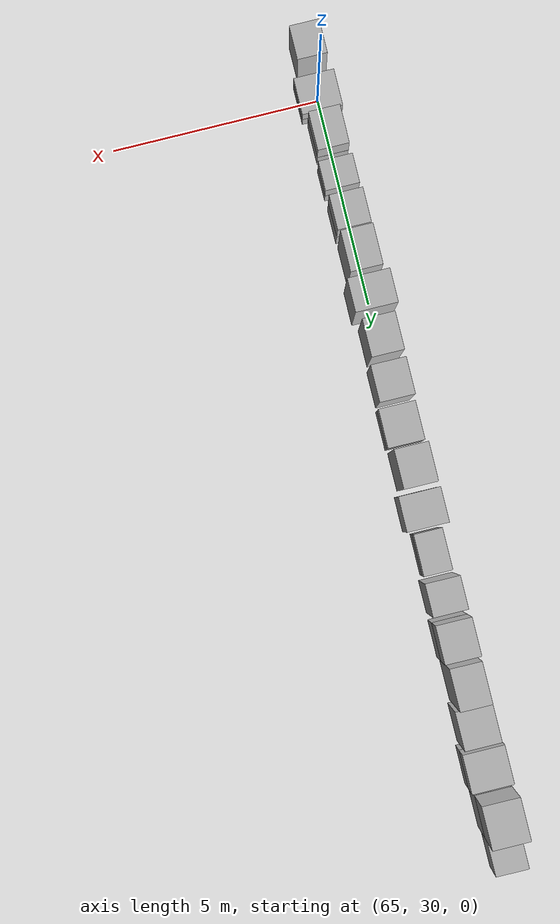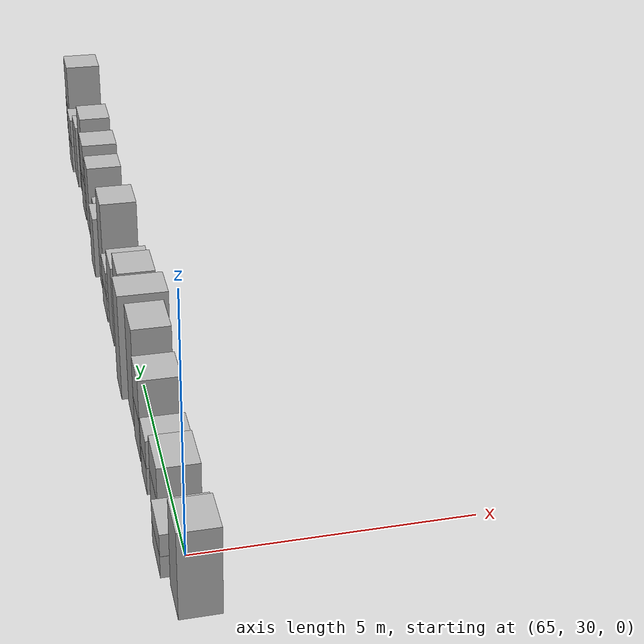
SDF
<sdf version="1.5">
 <world name="default">
  <model name="ground_plane">
   <static>true</static>
   <link name="link">
    <collision name="collision">
     <geometry><plane><normal>0 0 1</normal><size>250 250</size></plane></geometry>
     <surface><friction><ode><mu>1</mu><mu2>1</mu2></ode></friction></surface>
    </collision>
    <visual name="grass">
     <cast_shadows>false</cast_shadows>
     <geometry><mesh><uri>file://grass_plane/meshes/grass_plane.dae</uri></mesh></geometry>
    </visual>
   </link>
  </model>
  <model name="Cardboard_box_739">
   <link name="link_0">
    <pose>65 29 0 0 0 0</pose>
    <inertial>
     <mass>1</mass>
     <inertia>
      <ixx>0.166667</ixx>
      <ixy>0</ixy>
      <ixz>0</ixz>
      <iyy>0.166667</iyy>
      <iyz>0</iyz>
      <izz>0.166667</izz>
     </inertia>
    </inertial>
    <collision name="collision">
     <geometry>
      <mesh>
       <uri>model://Cardboard_box/meshes/cardboard_box.dae</uri>
       <scale>1.76866995523 2.01658315963 4.29012516241</scale>
      </mesh>
     </geometry>
    </collision>
    <visual name="visual">
     <geometry>
      <mesh>
       <uri>model://Cardboard_box/meshes/cardboard_box.dae</uri>
       <scale>1.76866995523 2.01658315963 4.29012516241</scale>
      </mesh>
     </geometry>
    </visual>
   </link>
   <static>1</static>
  </model>
  <model name="Cardboard_box_740">
   <link name="link_0">
    <pose>65 30 0 0 0 0</pose>
    <inertial>
     <mass>1</mass>
     <inertia>
      <ixx>0.166667</ixx>
      <ixy>0</ixy>
      <ixz>0</ixz>
      <iyy>0.166667</iyy>
      <iyz>0</iyz>
      <izz>0.166667</izz>
     </inertia>
    </inertial>
    <collision name="collision">
     <geometry>
      <mesh>
       <uri>model://Cardboard_box/meshes/cardboard_box.dae</uri>
       <scale>2.43798719399 2.21636143207 1.10087545298</scale>
      </mesh>
     </geometry>
    </collision>
    <visual name="visual">
     <geometry>
      <mesh>
       <uri>model://Cardboard_box/meshes/cardboard_box.dae</uri>
       <scale>2.43798719399 2.21636143207 1.10087545298</scale>
      </mesh>
     </geometry>
    </visual>
   </link>
   <static>1</static>
  </model>
  <model name="Cardboard_box_top_740">
   <link name="link_0">
    <pose>65 30 0.440350181191 0 0 0</pose>
    <inertial>
     <mass>1</mass>
     <inertia>
      <ixx>0.166667</ixx>
      <ixy>0</ixy>
      <ixz>0</ixz>
      <iyy>0.166667</iyy>
      <iyz>0</iyz>
      <izz>0.166667</izz>
     </inertia>
    </inertial>
    <collision name="collision">
     <geometry>
      <mesh>
       <uri>model://Cardboard_box/meshes/cardboard_box.dae</uri>
       <scale>2.43798719399 2.21636143207 1.10087545298</scale>
      </mesh>
     </geometry>
    </collision>
    <visual name="visual">
     <geometry>
      <mesh>
       <uri>model://Cardboard_box/meshes/cardboard_box.dae</uri>
       <scale>2.43798719399 2.21636143207 1.10087545298</scale>
      </mesh>
     </geometry>
    </visual>
   </link>
   <static>1</static>
  </model>
  <model name="Cardboard_box_741">
   <link name="link_0">
    <pose>65 31 0 0 0 0</pose>
    <inertial>
     <mass>1</mass>
     <inertia>
      <ixx>0.166667</ixx>
      <ixy>0</ixy>
      <ixz>0</ixz>
      <iyy>0.166667</iyy>
      <iyz>0</iyz>
      <izz>0.166667</izz>
     </inertia>
    </inertial>
    <collision name="collision">
     <geometry>
      <mesh>
       <uri>model://Cardboard_box/meshes/cardboard_box.dae</uri>
       <scale>1.87311480055 2.31538497943 1.75690551858</scale>
      </mesh>
     </geometry>
    </collision>
    <visual name="visual">
     <geometry>
      <mesh>
       <uri>model://Cardboard_box/meshes/cardboard_box.dae</uri>
       <scale>1.87311480055 2.31538497943 1.75690551858</scale>
      </mesh>
     </geometry>
    </visual>
   </link>
   <static>1</static>
  </model>
  <model name="Cardboard_box_top_741">
   <link name="link_0">
    <pose>65 31 0.702762207433 0 0 0</pose>
    <inertial>
     <mass>1</mass>
     <inertia>
      <ixx>0.166667</ixx>
      <ixy>0</ixy>
      <ixz>0</ixz>
      <iyy>0.166667</iyy>
      <iyz>0</iyz>
      <izz>0.166667</izz>
     </inertia>
    </inertial>
    <collision name="collision">
     <geometry>
      <mesh>
       <uri>model://Cardboard_box/meshes/cardboard_box.dae</uri>
       <scale>1.87311480055 2.31538497943 1.75690551858</scale>
      </mesh>
     </geometry>
    </collision>
    <visual name="visual">
     <geometry>
      <mesh>
       <uri>model://Cardboard_box/meshes/cardboard_box.dae</uri>
       <scale>1.87311480055 2.31538497943 1.75690551858</scale>
      </mesh>
     </geometry>
    </visual>
   </link>
   <static>1</static>
  </model>
  <model name="Cardboard_box_742">
   <link name="link_0">
    <pose>65 32 0 0 0 0</pose>
    <inertial>
     <mass>1</mass>
     <inertia>
      <ixx>0.166667</ixx>
      <ixy>0</ixy>
      <ixz>0</ixz>
      <iyy>0.166667</iyy>
      <iyz>0</iyz>
      <izz>0.166667</izz>
     </inertia>
    </inertial>
    <collision name="collision">
     <geometry>
      <mesh>
       <uri>model://Cardboard_box/meshes/cardboard_box.dae</uri>
       <scale>2.0445589176 1.77837506042 1.42715309712</scale>
      </mesh>
     </geometry>
    </collision>
    <visual name="visual">
     <geometry>
      <mesh>
       <uri>model://Cardboard_box/meshes/cardboard_box.dae</uri>
       <scale>2.0445589176 1.77837506042 1.42715309712</scale>
      </mesh>
     </geometry>
    </visual>
   </link>
   <static>1</static>
  </model>
  <model name="Cardboard_box_top_742">
   <link name="link_0">
    <pose>65 32 0.570861238848 0 0 0</pose>
    <inertial>
     <mass>1</mass>
     <inertia>
      <ixx>0.166667</ixx>
      <ixy>0</ixy>
      <ixz>0</ixz>
      <iyy>0.166667</iyy>
      <iyz>0</iyz>
      <izz>0.166667</izz>
     </inertia>
    </inertial>
    <collision name="collision">
     <geometry>
      <mesh>
       <uri>model://Cardboard_box/meshes/cardboard_box.dae</uri>
       <scale>2.0445589176 1.77837506042 1.42715309712</scale>
      </mesh>
     </geometry>
    </collision>
    <visual name="visual">
     <geometry>
      <mesh>
       <uri>model://Cardboard_box/meshes/cardboard_box.dae</uri>
       <scale>2.0445589176 1.77837506042 1.42715309712</scale>
      </mesh>
     </geometry>
    </visual>
   </link>
   <static>1</static>
  </model>
  <model name="Cardboard_box_743">
   <link name="link_0">
    <pose>65 33 0 0 0 0</pose>
    <inertial>
     <mass>1</mass>
     <inertia>
      <ixx>0.166667</ixx>
      <ixy>0</ixy>
      <ixz>0</ixz>
      <iyy>0.166667</iyy>
      <iyz>0</iyz>
      <izz>0.166667</izz>
     </inertia>
    </inertial>
    <collision name="collision">
     <geometry>
      <mesh>
       <uri>model://Cardboard_box/meshes/cardboard_box.dae</uri>
       <scale>1.97959988308 2.07104216451 2.18324209862</scale>
      </mesh>
     </geometry>
    </collision>
    <visual name="visual">
     <geometry>
      <mesh>
       <uri>model://Cardboard_box/meshes/cardboard_box.dae</uri>
       <scale>1.97959988308 2.07104216451 2.18324209862</scale>
      </mesh>
     </geometry>
    </visual>
   </link>
   <static>1</static>
  </model>
  <model name="Cardboard_box_top_743">
   <link name="link_0">
    <pose>65 33 0.873296839447 0 0 0</pose>
    <inertial>
     <mass>1</mass>
     <inertia>
      <ixx>0.166667</ixx>
      <ixy>0</ixy>
      <ixz>0</ixz>
      <iyy>0.166667</iyy>
      <iyz>0</iyz>
      <izz>0.166667</izz>
     </inertia>
    </inertial>
    <collision name="collision">
     <geometry>
      <mesh>
       <uri>model://Cardboard_box/meshes/cardboard_box.dae</uri>
       <scale>1.97959988308 2.07104216451 2.18324209862</scale>
      </mesh>
     </geometry>
    </collision>
    <visual name="visual">
     <geometry>
      <mesh>
       <uri>model://Cardboard_box/meshes/cardboard_box.dae</uri>
       <scale>1.97959988308 2.07104216451 2.18324209862</scale>
      </mesh>
     </geometry>
    </visual>
   </link>
   <static>1</static>
  </model>
  <model name="Cardboard_box_744">
   <link name="link_0">
    <pose>65 34 0 0 0 0</pose>
    <inertial>
     <mass>1</mass>
     <inertia>
      <ixx>0.166667</ixx>
      <ixy>0</ixy>
      <ixz>0</ixz>
      <iyy>0.166667</iyy>
      <iyz>0</iyz>
      <izz>0.166667</izz>
     </inertia>
    </inertial>
    <collision name="collision">
     <geometry>
      <mesh>
       <uri>model://Cardboard_box/meshes/cardboard_box.dae</uri>
       <scale>1.87508634725 2.41101756407 5.58330068926</scale>
      </mesh>
     </geometry>
    </collision>
    <visual name="visual">
     <geometry>
      <mesh>
       <uri>model://Cardboard_box/meshes/cardboard_box.dae</uri>
       <scale>1.87508634725 2.41101756407 5.58330068926</scale>
      </mesh>
     </geometry>
    </visual>
   </link>
   <static>1</static>
  </model>
  <model name="Cardboard_box_745">
   <link name="link_0">
    <pose>65 35 0 0 0 0</pose>
    <inertial>
     <mass>1</mass>
     <inertia>
      <ixx>0.166667</ixx>
      <ixy>0</ixy>
      <ixz>0</ixz>
      <iyy>0.166667</iyy>
      <iyz>0</iyz>
      <izz>0.166667</izz>
     </inertia>
    </inertial>
    <collision name="collision">
     <geometry>
      <mesh>
       <uri>model://Cardboard_box/meshes/cardboard_box.dae</uri>
       <scale>2.46530652901 1.98081289666 5.80742223712</scale>
      </mesh>
     </geometry>
    </collision>
    <visual name="visual">
     <geometry>
      <mesh>
       <uri>model://Cardboard_box/meshes/cardboard_box.dae</uri>
       <scale>2.46530652901 1.98081289666 5.80742223712</scale>
      </mesh>
     </geometry>
    </visual>
   </link>
   <static>1</static>
  </model>
  <model name="Cardboard_box_746">
   <link name="link_0">
    <pose>65 36 0 0 0 0</pose>
    <inertial>
     <mass>1</mass>
     <inertia>
      <ixx>0.166667</ixx>
      <ixy>0</ixy>
      <ixz>0</ixz>
      <iyy>0.166667</iyy>
      <iyz>0</iyz>
      <izz>0.166667</izz>
     </inertia>
    </inertial>
    <collision name="collision">
     <geometry>
      <mesh>
       <uri>model://Cardboard_box/meshes/cardboard_box.dae</uri>
       <scale>1.89600884008 2.22310764352 5.66974886308</scale>
      </mesh>
     </geometry>
    </collision>
    <visual name="visual">
     <geometry>
      <mesh>
       <uri>model://Cardboard_box/meshes/cardboard_box.dae</uri>
       <scale>1.89600884008 2.22310764352 5.66974886308</scale>
      </mesh>
     </geometry>
    </visual>
   </link>
   <static>1</static>
  </model>
  <model name="Cardboard_box_747">
   <link name="link_0">
    <pose>65 37 0 0 0 0</pose>
    <inertial>
     <mass>1</mass>
     <inertia>
      <ixx>0.166667</ixx>
      <ixy>0</ixy>
      <ixz>0</ixz>
      <iyy>0.166667</iyy>
      <iyz>0</iyz>
      <izz>0.166667</izz>
     </inertia>
    </inertial>
    <collision name="collision">
     <geometry>
      <mesh>
       <uri>model://Cardboard_box/meshes/cardboard_box.dae</uri>
       <scale>2.0798650006 2.19241515546 4.60554168689</scale>
      </mesh>
     </geometry>
    </collision>
    <visual name="visual">
     <geometry>
      <mesh>
       <uri>model://Cardboard_box/meshes/cardboard_box.dae</uri>
       <scale>2.0798650006 2.19241515546 4.60554168689</scale>
      </mesh>
     </geometry>
    </visual>
   </link>
   <static>1</static>
  </model>
  <model name="Cardboard_box_748">
   <link name="link_0">
    <pose>65 38 0 0 0 0</pose>
    <inertial>
     <mass>1</mass>
     <inertia>
      <ixx>0.166667</ixx>
      <ixy>0</ixy>
      <ixz>0</ixz>
      <iyy>0.166667</iyy>
      <iyz>0</iyz>
      <izz>0.166667</izz>
     </inertia>
    </inertial>
    <collision name="collision">
     <geometry>
      <mesh>
       <uri>model://Cardboard_box/meshes/cardboard_box.dae</uri>
       <scale>2.19648079356 2.33340761371 1.49632309891</scale>
      </mesh>
     </geometry>
    </collision>
    <visual name="visual">
     <geometry>
      <mesh>
       <uri>model://Cardboard_box/meshes/cardboard_box.dae</uri>
       <scale>2.19648079356 2.33340761371 1.49632309891</scale>
      </mesh>
     </geometry>
    </visual>
   </link>
   <static>1</static>
  </model>
  <model name="Cardboard_box_top_748">
   <link name="link_0">
    <pose>65 38 0.598529239564 0 0 0</pose>
    <inertial>
     <mass>1</mass>
     <inertia>
      <ixx>0.166667</ixx>
      <ixy>0</ixy>
      <ixz>0</ixz>
      <iyy>0.166667</iyy>
      <iyz>0</iyz>
      <izz>0.166667</izz>
     </inertia>
    </inertial>
    <collision name="collision">
     <geometry>
      <mesh>
       <uri>model://Cardboard_box/meshes/cardboard_box.dae</uri>
       <scale>2.19648079356 2.33340761371 1.49632309891</scale>
      </mesh>
     </geometry>
    </collision>
    <visual name="visual">
     <geometry>
      <mesh>
       <uri>model://Cardboard_box/meshes/cardboard_box.dae</uri>
       <scale>2.19648079356 2.33340761371 1.49632309891</scale>
      </mesh>
     </geometry>
    </visual>
   </link>
   <static>1</static>
  </model>
  <model name="Cardboard_box_749">
   <link name="link_0">
    <pose>65 39 0 0 0 0</pose>
    <inertial>
     <mass>1</mass>
     <inertia>
      <ixx>0.166667</ixx>
      <ixy>0</ixy>
      <ixz>0</ixz>
      <iyy>0.166667</iyy>
      <iyz>0</iyz>
      <izz>0.166667</izz>
     </inertia>
    </inertial>
    <collision name="collision">
     <geometry>
      <mesh>
       <uri>model://Cardboard_box/meshes/cardboard_box.dae</uri>
       <scale>1.98604388998 2.2956985302 5.83499440048</scale>
      </mesh>
     </geometry>
    </collision>
    <visual name="visual">
     <geometry>
      <mesh>
       <uri>model://Cardboard_box/meshes/cardboard_box.dae</uri>
       <scale>1.98604388998 2.2956985302 5.83499440048</scale>
      </mesh>
     </geometry>
    </visual>
   </link>
   <static>1</static>
  </model>
  <model name="Cardboard_box_750">
   <link name="link_0">
    <pose>65 40 0 0 0 0</pose>
    <inertial>
     <mass>1</mass>
     <inertia>
      <ixx>0.166667</ixx>
      <ixy>0</ixy>
      <ixz>0</ixz>
      <iyy>0.166667</iyy>
      <iyz>0</iyz>
      <izz>0.166667</izz>
     </inertia>
    </inertial>
    <collision name="collision">
     <geometry>
      <mesh>
       <uri>model://Cardboard_box/meshes/cardboard_box.dae</uri>
       <scale>2.48858319817 2.0896666984 3.70239438747</scale>
      </mesh>
     </geometry>
    </collision>
    <visual name="visual">
     <geometry>
      <mesh>
       <uri>model://Cardboard_box/meshes/cardboard_box.dae</uri>
       <scale>2.48858319817 2.0896666984 3.70239438747</scale>
      </mesh>
     </geometry>
    </visual>
   </link>
   <static>1</static>
  </model>
  <model name="Cardboard_box_751">
   <link name="link_0">
    <pose>65 41 0 0 0 0</pose>
    <inertial>
     <mass>1</mass>
     <inertia>
      <ixx>0.166667</ixx>
      <ixy>0</ixy>
      <ixz>0</ixz>
      <iyy>0.166667</iyy>
      <iyz>0</iyz>
      <izz>0.166667</izz>
     </inertia>
    </inertial>
    <collision name="collision">
     <geometry>
      <mesh>
       <uri>model://Cardboard_box/meshes/cardboard_box.dae</uri>
       <scale>1.71458334023 2.49422733134 1.40936964639</scale>
      </mesh>
     </geometry>
    </collision>
    <visual name="visual">
     <geometry>
      <mesh>
       <uri>model://Cardboard_box/meshes/cardboard_box.dae</uri>
       <scale>1.71458334023 2.49422733134 1.40936964639</scale>
      </mesh>
     </geometry>
    </visual>
   </link>
   <static>1</static>
  </model>
  <model name="Cardboard_box_top_751">
   <link name="link_0">
    <pose>65 41 0.563747858556 0 0 0</pose>
    <inertial>
     <mass>1</mass>
     <inertia>
      <ixx>0.166667</ixx>
      <ixy>0</ixy>
      <ixz>0</ixz>
      <iyy>0.166667</iyy>
      <iyz>0</iyz>
      <izz>0.166667</izz>
     </inertia>
    </inertial>
    <collision name="collision">
     <geometry>
      <mesh>
       <uri>model://Cardboard_box/meshes/cardboard_box.dae</uri>
       <scale>1.71458334023 2.49422733134 1.40936964639</scale>
      </mesh>
     </geometry>
    </collision>
    <visual name="visual">
     <geometry>
      <mesh>
       <uri>model://Cardboard_box/meshes/cardboard_box.dae</uri>
       <scale>1.71458334023 2.49422733134 1.40936964639</scale>
      </mesh>
     </geometry>
    </visual>
   </link>
   <static>1</static>
  </model>
  <model name="Cardboard_box_752">
   <link name="link_0">
    <pose>65 42 0 0 0 0</pose>
    <inertial>
     <mass>1</mass>
     <inertia>
      <ixx>0.166667</ixx>
      <ixy>0</ixy>
      <ixz>0</ixz>
      <iyy>0.166667</iyy>
      <iyz>0</iyz>
      <izz>0.166667</izz>
     </inertia>
    </inertial>
    <collision name="collision">
     <geometry>
      <mesh>
       <uri>model://Cardboard_box/meshes/cardboard_box.dae</uri>
       <scale>2.05489955876 1.96227510527 4.54835801782</scale>
      </mesh>
     </geometry>
    </collision>
    <visual name="visual">
     <geometry>
      <mesh>
       <uri>model://Cardboard_box/meshes/cardboard_box.dae</uri>
       <scale>2.05489955876 1.96227510527 4.54835801782</scale>
      </mesh>
     </geometry>
    </visual>
   </link>
   <static>1</static>
  </model>
  <model name="Cardboard_box_753">
   <link name="link_0">
    <pose>65 43 0 0 0 0</pose>
    <inertial>
     <mass>1</mass>
     <inertia>
      <ixx>0.166667</ixx>
      <ixy>0</ixy>
      <ixz>0</ixz>
      <iyy>0.166667</iyy>
      <iyz>0</iyz>
      <izz>0.166667</izz>
     </inertia>
    </inertial>
    <collision name="collision">
     <geometry>
      <mesh>
       <uri>model://Cardboard_box/meshes/cardboard_box.dae</uri>
       <scale>2.11660725376 2.25254695966 2.50262152532</scale>
      </mesh>
     </geometry>
    </collision>
    <visual name="visual">
     <geometry>
      <mesh>
       <uri>model://Cardboard_box/meshes/cardboard_box.dae</uri>
       <scale>2.11660725376 2.25254695966 2.50262152532</scale>
      </mesh>
     </geometry>
    </visual>
   </link>
   <static>1</static>
  </model>
  <model name="Cardboard_box_top_753">
   <link name="link_0">
    <pose>65 43 1.00104861013 0 0 0</pose>
    <inertial>
     <mass>1</mass>
     <inertia>
      <ixx>0.166667</ixx>
      <ixy>0</ixy>
      <ixz>0</ixz>
      <iyy>0.166667</iyy>
      <iyz>0</iyz>
      <izz>0.166667</izz>
     </inertia>
    </inertial>
    <collision name="collision">
     <geometry>
      <mesh>
       <uri>model://Cardboard_box/meshes/cardboard_box.dae</uri>
       <scale>2.11660725376 2.25254695966 2.50262152532</scale>
      </mesh>
     </geometry>
    </collision>
    <visual name="visual">
     <geometry>
      <mesh>
       <uri>model://Cardboard_box/meshes/cardboard_box.dae</uri>
       <scale>2.11660725376 2.25254695966 2.50262152532</scale>
      </mesh>
     </geometry>
    </visual>
   </link>
   <static>1</static>
  </model>
  <model name="Cardboard_box_754">
   <link name="link_0">
    <pose>65 44 0 0 0 0</pose>
    <inertial>
     <mass>1</mass>
     <inertia>
      <ixx>0.166667</ixx>
      <ixy>0</ixy>
      <ixz>0</ixz>
      <iyy>0.166667</iyy>
      <iyz>0</iyz>
      <izz>0.166667</izz>
     </inertia>
    </inertial>
    <collision name="collision">
     <geometry>
      <mesh>
       <uri>model://Cardboard_box/meshes/cardboard_box.dae</uri>
       <scale>1.87354160528 2.44635348363 5.78813880307</scale>
      </mesh>
     </geometry>
    </collision>
    <visual name="visual">
     <geometry>
      <mesh>
       <uri>model://Cardboard_box/meshes/cardboard_box.dae</uri>
       <scale>1.87354160528 2.44635348363 5.78813880307</scale>
      </mesh>
     </geometry>
    </visual>
   </link>
   <static>1</static>
  </model>
  <model name="Cardboard_box_755">
   <link name="link_0">
    <pose>65 45 0 0 0 0</pose>
    <inertial>
     <mass>1</mass>
     <inertia>
      <ixx>0.166667</ixx>
      <ixy>0</ixy>
      <ixz>0</ixz>
      <iyy>0.166667</iyy>
      <iyz>0</iyz>
      <izz>0.166667</izz>
     </inertia>
    </inertial>
    <collision name="collision">
     <geometry>
      <mesh>
       <uri>model://Cardboard_box/meshes/cardboard_box.dae</uri>
       <scale>2.17456741704 2.26877923941 4.19143232445</scale>
      </mesh>
     </geometry>
    </collision>
    <visual name="visual">
     <geometry>
      <mesh>
       <uri>model://Cardboard_box/meshes/cardboard_box.dae</uri>
       <scale>2.17456741704 2.26877923941 4.19143232445</scale>
      </mesh>
     </geometry>
    </visual>
   </link>
   <static>1</static>
  </model>
  <model name="Cardboard_box_756">
   <link name="link_0">
    <pose>65 46 0 0 0 0</pose>
    <inertial>
     <mass>1</mass>
     <inertia>
      <ixx>0.166667</ixx>
      <ixy>0</ixy>
      <ixz>0</ixz>
      <iyy>0.166667</iyy>
      <iyz>0</iyz>
      <izz>0.166667</izz>
     </inertia>
    </inertial>
    <collision name="collision">
     <geometry>
      <mesh>
       <uri>model://Cardboard_box/meshes/cardboard_box.dae</uri>
       <scale>2.47629334912 2.28518857586 1.84838982591</scale>
      </mesh>
     </geometry>
    </collision>
    <visual name="visual">
     <geometry>
      <mesh>
       <uri>model://Cardboard_box/meshes/cardboard_box.dae</uri>
       <scale>2.47629334912 2.28518857586 1.84838982591</scale>
      </mesh>
     </geometry>
    </visual>
   </link>
   <static>1</static>
  </model>
  <model name="Cardboard_box_top_756">
   <link name="link_0">
    <pose>65 46 0.739355930362 0 0 0</pose>
    <inertial>
     <mass>1</mass>
     <inertia>
      <ixx>0.166667</ixx>
      <ixy>0</ixy>
      <ixz>0</ixz>
      <iyy>0.166667</iyy>
      <iyz>0</iyz>
      <izz>0.166667</izz>
     </inertia>
    </inertial>
    <collision name="collision">
     <geometry>
      <mesh>
       <uri>model://Cardboard_box/meshes/cardboard_box.dae</uri>
       <scale>2.47629334912 2.28518857586 1.84838982591</scale>
      </mesh>
     </geometry>
    </collision>
    <visual name="visual">
     <geometry>
      <mesh>
       <uri>model://Cardboard_box/meshes/cardboard_box.dae</uri>
       <scale>2.47629334912 2.28518857586 1.84838982591</scale>
      </mesh>
     </geometry>
    </visual>
   </link>
   <static>1</static>
  </model>
  <model name="Cardboard_box_757">
   <link name="link_0">
    <pose>65 47 0 0 0 0</pose>
    <inertial>
     <mass>1</mass>
     <inertia>
      <ixx>0.166667</ixx>
      <ixy>0</ixy>
      <ixz>0</ixz>
      <iyy>0.166667</iyy>
      <iyz>0</iyz>
      <izz>0.166667</izz>
     </inertia>
    </inertial>
    <collision name="collision">
     <geometry>
      <mesh>
       <uri>model://Cardboard_box/meshes/cardboard_box.dae</uri>
       <scale>2.19580411812 2.46295570532 3.27258536676</scale>
      </mesh>
     </geometry>
    </collision>
    <visual name="visual">
     <geometry>
      <mesh>
       <uri>model://Cardboard_box/meshes/cardboard_box.dae</uri>
       <scale>2.19580411812 2.46295570532 3.27258536676</scale>
      </mesh>
     </geometry>
    </visual>
   </link>
   <static>1</static>
  </model>
  <model name="Cardboard_box_top_757">
   <link name="link_0">
    <pose>65 47 1.30903414671 0 0 0</pose>
    <inertial>
     <mass>1</mass>
     <inertia>
      <ixx>0.166667</ixx>
      <ixy>0</ixy>
      <ixz>0</ixz>
      <iyy>0.166667</iyy>
      <iyz>0</iyz>
      <izz>0.166667</izz>
     </inertia>
    </inertial>
    <collision name="collision">
     <geometry>
      <mesh>
       <uri>model://Cardboard_box/meshes/cardboard_box.dae</uri>
       <scale>2.19580411812 2.46295570532 3.27258536676</scale>
      </mesh>
     </geometry>
    </collision>
    <visual name="visual">
     <geometry>
      <mesh>
       <uri>model://Cardboard_box/meshes/cardboard_box.dae</uri>
       <scale>2.19580411812 2.46295570532 3.27258536676</scale>
      </mesh>
     </geometry>
    </visual>
   </link>
   <static>1</static>
  </model>
  <model name="Cardboard_box_758">
   <link name="link_0">
    <pose>65 48 0 0 0 0</pose>
    <inertial>
     <mass>1</mass>
     <inertia>
      <ixx>0.166667</ixx>
      <ixy>0</ixy>
      <ixz>0</ixz>
      <iyy>0.166667</iyy>
      <iyz>0</iyz>
      <izz>0.166667</izz>
     </inertia>
    </inertial>
    <collision name="collision">
     <geometry>
      <mesh>
       <uri>model://Cardboard_box/meshes/cardboard_box.dae</uri>
       <scale>1.96611906747 2.23167727122 2.78919078645</scale>
      </mesh>
     </geometry>
    </collision>
    <visual name="visual">
     <geometry>
      <mesh>
       <uri>model://Cardboard_box/meshes/cardboard_box.dae</uri>
       <scale>1.96611906747 2.23167727122 2.78919078645</scale>
      </mesh>
     </geometry>
    </visual>
   </link>
   <static>1</static>
  </model>
 </world>
</sdf>
